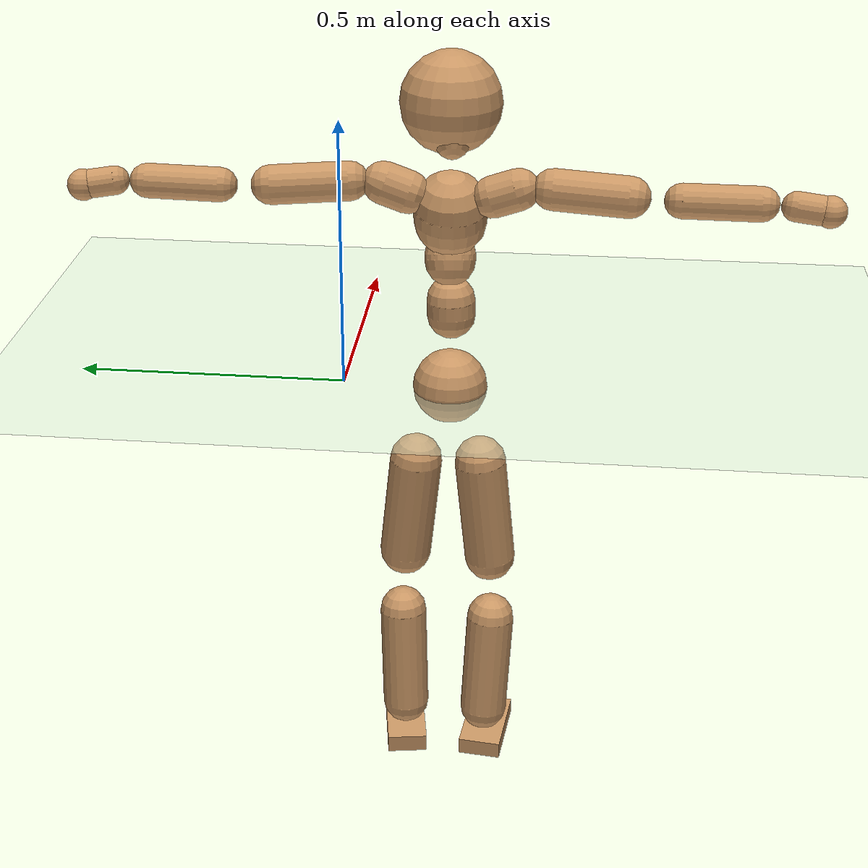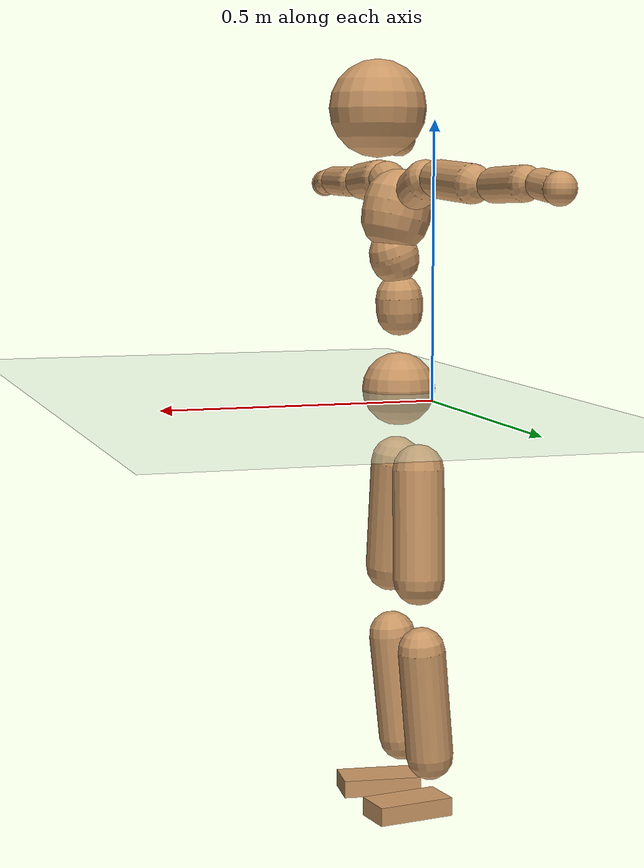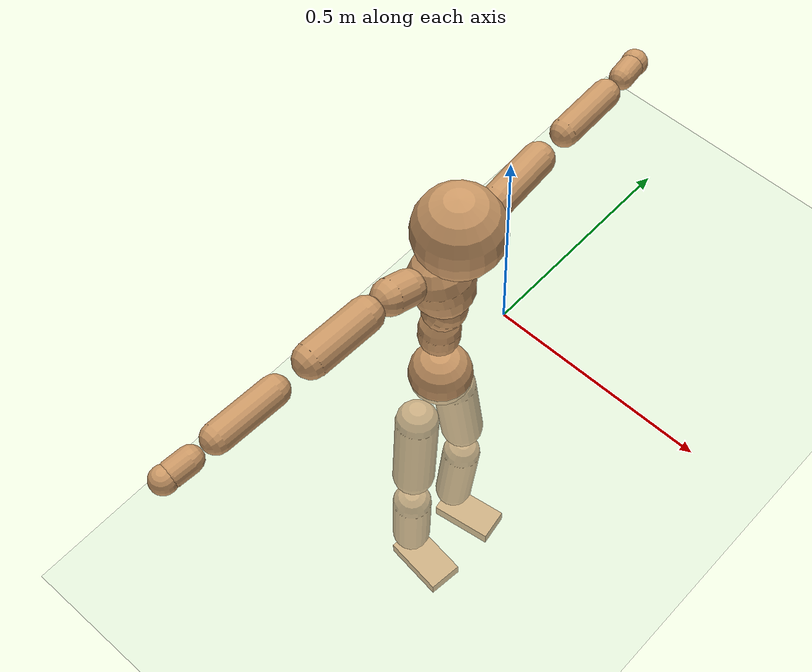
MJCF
<mujoco model="humanoid">
  <compiler coordinate="local"/>
  <default>
    <joint damping="0.0" armature="0.01" stiffness="0.0" limited="true"/>
    <geom conaffinity="1" condim="3" contype="7" margin="0.001" rgba="0.8 0.6 .4 1"/>
  </default>
  <asset>
    <texture type="skybox" builtin="gradient" rgb1=".4 .5 .6" rgb2="0 0 0" width="100" height="100"/>
    <texture builtin="flat" height="1278" mark="cross" markrgb="1 1 1" name="texgeom" random="0.01" rgb1="0.8 0.6 0.4" rgb2="0.8 0.6 0.4" type="cube" width="127"/>
    <texture builtin="checker" height="100" name="texplane" rgb1="0 0 0" rgb2="0.8 0.8 0.8" type="2d" width="100"/>
    <material name="MatPlane" reflectance="0.5" shininess="1" specular="1" texrepeat="60 60" texture="texplane"/>
    <material name="geom" texture="texgeom" texuniform="true"/>
  </asset>
  <worldbody>
    <light cutoff="100" diffuse="1 1 1" dir="-0 0 -1.3" directional="true" exponent="1" pos="0 0 1.3" specular=".1 .1 .1"/>
    <geom conaffinity="1" condim="3" name="floor" pos="0 0 0" rgba="0.8 0.9 0.8 1" size="100 100 .2" type="plane" material="MatPlane"/>
    <body name="Pelvis" pos="-0.0029 -0.1986 0.0023">
      <freejoint name="Pelvis"/>
      <geom type="sphere" contype="1" conaffinity="1" density="500" size="0.0692" pos="0.0000 0.0000 0.0000" name="Pelvis"/>
      <body name="L_Hip" pos="-0.0205 0.0544 -0.0803">
        <joint name="L_Hip_x" type="hinge" pos="0 0 0" axis="1 0 0" stiffness="800" damping="80" armature="0.02" range="-180.0000 180.0000"/>
        <joint name="L_Hip_y" type="hinge" pos="0 0 0" axis="0 1 0" stiffness="800" damping="80" armature="0.02" range="-180.0000 180.0000"/>
        <joint name="L_Hip_z" type="hinge" pos="0 0 0" axis="0 0 1" stiffness="800" damping="80" armature="0.02" range="-180.0000 180.0000"/>
        <geom type="capsule" contype="1" conaffinity="1" density="500" fromto="0.0017 0.0070 -0.0683 0.0068 0.0279 -0.2731" size="0.0492" name="L_Hip"/>
        <body name="L_Knee" pos="0.0085 0.0348 -0.3414">
          <joint name="L_Knee_x" type="hinge" pos="0 0 0" axis="1 0 0" stiffness="800" damping="80" armature="0.02" range="-180.0000 180.0000"/>
          <joint name="L_Knee_y" type="hinge" pos="0 0 0" axis="0 1 0" stiffness="800" damping="80" armature="0.02" range="-180.0000 180.0000"/>
          <joint name="L_Knee_z" type="hinge" pos="0 0 0" axis="0 0 1" stiffness="800" damping="80" armature="0.02" range="-180.0000 180.0000"/>
          <geom type="capsule" contype="1" conaffinity="1" density="500" fromto="-0.0067 -0.0023 -0.0694 -0.0268 -0.0094 -0.2776" size="0.0452" name="L_Knee"/>
          <body name="L_Ankle" pos="-0.0335 -0.0117 -0.347">
            <joint name="L_Ankle_x" type="hinge" pos="0 0 0" axis="1 0 0" stiffness="800" damping="80" armature="0.02" range="-180.0000 180.0000"/>
            <joint name="L_Ankle_y" type="hinge" pos="0 0 0" axis="0 1 0" stiffness="800" damping="80" armature="0.02" range="-180.0000 180.0000"/>
            <joint name="L_Ankle_z" type="hinge" pos="0 0 0" axis="0 0 1" stiffness="800" damping="80" armature="0.02" range="-180.0000 180.0000"/>
            <geom type="box" contype="1" conaffinity="1" density="500" pos="0.0533 0.0084 -0.0241" size="0.0754 0.039 0.0176" quat="0.9969 0.0000 0.0000 0.0781" name="L_Ankle"/>
            <body name="L_Toe" pos="0.1065 0.0168 -0.0482">
              <joint name="L_Toe_x" type="hinge" pos="0 0 0" axis="1 0 0" stiffness="500" damping="50" armature="0.02" range="-180.0000 180.0000"/>
              <joint name="L_Toe_y" type="hinge" pos="0 0 0" axis="0 1 0" stiffness="500" damping="50" armature="0.02" range="-180.0000 180.0000"/>
              <joint name="L_Toe_z" type="hinge" pos="0 0 0" axis="0 0 1" stiffness="500" damping="50" armature="0.02" range="-180.0000 180.0000"/>
              <geom type="box" contype="1" conaffinity="1" density="500" pos="0.0000 0.0000 0.0252" size="0.0008 0.002 0.0009" quat="0.9963 0.0000 0.0000 0.0856" name="L_Toe"/>
            </body>
          </body>
        </body>
      </body>
      <body name="R_Hip" pos="-0.0171 -0.0526 -0.0781">
        <joint name="R_Hip_x" type="hinge" pos="0 0 0" axis="1 0 0" stiffness="800" damping="80" armature="0.02" range="-180.0000 180.0000"/>
        <joint name="R_Hip_y" type="hinge" pos="0 0 0" axis="0 1 0" stiffness="800" damping="80" armature="0.02" range="-180.0000 180.0000"/>
        <joint name="R_Hip_z" type="hinge" pos="0 0 0" axis="0 0 1" stiffness="800" damping="80" armature="0.02" range="-180.0000 180.0000"/>
        <geom type="capsule" contype="1" conaffinity="1" density="500" fromto="0.0009 -0.0074 -0.0700 0.0037 -0.0296 -0.2801" size="0.0485" name="R_Hip"/>
        <body name="R_Knee" pos="0.0046 -0.037 -0.3501">
          <joint name="R_Knee_x" type="hinge" pos="0 0 0" axis="1 0 0" stiffness="800" damping="80" armature="0.02" range="-180.0000 180.0000"/>
          <joint name="R_Knee_y" type="hinge" pos="0 0 0" axis="0 1 0" stiffness="800" damping="80" armature="0.02" range="-180.0000 180.0000"/>
          <joint name="R_Knee_z" type="hinge" pos="0 0 0" axis="0 0 1" stiffness="800" damping="80" armature="0.02" range="-180.0000 180.0000"/>
          <geom type="capsule" contype="1" conaffinity="1" density="500" fromto="-0.0063 0.0030 -0.0691 -0.0252 0.0120 -0.2765" size="0.0457" name="R_Knee"/>
          <body name="R_Ankle" pos="-0.0314 0.0149 -0.3456">
            <joint name="R_Ankle_x" type="hinge" pos="0 0 0" axis="1 0 0" stiffness="800" damping="80" armature="0.02" range="-180.0000 180.0000"/>
            <joint name="R_Ankle_y" type="hinge" pos="0 0 0" axis="0 1 0" stiffness="800" damping="80" armature="0.02" range="-180.0000 180.0000"/>
            <joint name="R_Ankle_z" type="hinge" pos="0 0 0" axis="0 0 1" stiffness="800" damping="80" armature="0.02" range="-180.0000 180.0000"/>
            <geom type="box" contype="1" conaffinity="1" density="500" pos="0.0543 -0.0061 -0.0201" size="0.0764 0.0415 0.0168" quat="0.9984 0.0000 0.0000 -0.0557" name="R_Ankle"/>
            <body name="R_Toe" pos="0.1086 -0.0122 -0.0401">
              <joint name="R_Toe_x" type="hinge" pos="0 0 0" axis="1 0 0" stiffness="500" damping="50" armature="0.02" range="-180.0000 180.0000"/>
              <joint name="R_Toe_y" type="hinge" pos="0 0 0" axis="0 1 0" stiffness="500" damping="50" armature="0.02" range="-180.0000 180.0000"/>
              <joint name="R_Toe_z" type="hinge" pos="0 0 0" axis="0 0 1" stiffness="500" damping="50" armature="0.02" range="-180.0000 180.0000"/>
              <geom type="box" contype="1" conaffinity="1" density="500" pos="0.0000 0.0000 0.0223" size="0.0008 0.002 0.001" quat="0.9990 0.0000 0.0000 -0.0458" name="R_Toe"/>
            </body>
          </body>
        </body>
      </body>
      <body name="Torso" pos="-0.003 -0.0026 0.0907">
        <joint name="Torso_x" type="hinge" pos="0 0 0" axis="1 0 0" stiffness="1000" damping="100" armature="0.02" range="-180.0000 180.0000"/>
        <joint name="Torso_y" type="hinge" pos="0 0 0" axis="0 1 0" stiffness="1000" damping="100" armature="0.02" range="-180.0000 180.0000"/>
        <joint name="Torso_z" type="hinge" pos="0 0 0" axis="0 0 1" stiffness="1000" damping="100" armature="0.02" range="-180.0000 180.0000"/>
        <geom type="capsule" contype="1" conaffinity="1" density="500" fromto="0.0029 0.0028 0.0815 0.0019 0.0019 0.0544" size="0.044361" name="Torso"/>
        <body name="Spine" pos="0.0049 0.0047 0.1359">
          <joint name="Spine_x" type="hinge" pos="0 0 0" axis="1 0 0" stiffness="1000" damping="100" armature="0.02" range="-180.0000 180.0000"/>
          <joint name="Spine_y" type="hinge" pos="0 0 0" axis="0 1 0" stiffness="1000" damping="100" armature="0.02" range="-180.0000 180.0000"/>
          <joint name="Spine_z" type="hinge" pos="0 0 0" axis="0 0 1" stiffness="1000" damping="100" armature="0.02" range="-180.0000 180.0000"/>
          <geom type="capsule" contype="1" conaffinity="1" density="500" fromto="0.0109 0.0013 0.0283 0.0073 0.0009 0.0188" size="0.0465" name="Spine"/>
          <body name="Chest" pos="0.0182 0.0022 0.0471">
            <joint name="Chest_x" type="hinge" pos="0 0 0" axis="1 0 0" stiffness="1000" damping="100" armature="0.02" range="-180.0000 180.0000"/>
            <joint name="Chest_y" type="hinge" pos="0 0 0" axis="0 1 0" stiffness="1000" damping="100" armature="0.02" range="-180.0000 180.0000"/>
            <joint name="Chest_z" type="hinge" pos="0 0 0" axis="0 0 1" stiffness="1000" damping="100" armature="0.02" range="-180.0000 180.0000"/>
            <geom type="capsule" contype="1" conaffinity="1" density="500" fromto="-0.0173 -0.0015 0.0744 -0.0115 -0.0010 0.0496" size="0.065472" name="Chest"/>
            <body name="Neck" pos="-0.0279 -0.0046 0.1797">
              <joint name="Neck_x" type="hinge" pos="0 0 0" axis="1 0 0" stiffness="500" damping="50" armature="0.02" range="-180.0000 180.0000"/>
              <joint name="Neck_y" type="hinge" pos="0 0 0" axis="0 1 0" stiffness="500" damping="50" armature="0.02" range="-180.0000 180.0000"/>
              <joint name="Neck_z" type="hinge" pos="0 0 0" axis="0 0 1" stiffness="500" damping="50" armature="0.02" range="-180.0000 180.0000"/>
              <geom type="capsule" contype="1" conaffinity="1" density="500" fromto="0.0107 0.0015 0.0141 0.0427 0.0062 0.0563" size="0.031806" name="Neck"/>
              <body name="Head" pos="0.0533 0.0077 0.0704">
                <joint name="Head_x" type="hinge" pos="0 0 0" axis="1 0 0" stiffness="500" damping="50" armature="0.02" range="-180.0000 180.0000"/>
                <joint name="Head_y" type="hinge" pos="0 0 0" axis="0 1 0" stiffness="500" damping="50" armature="0.02" range="-180.0000 180.0000"/>
                <joint name="Head_z" type="hinge" pos="0 0 0" axis="0 0 1" stiffness="500" damping="50" armature="0.02" range="-180.0000 180.0000"/>
                <geom type="sphere" contype="1" conaffinity="1" density="500" size="0.0906" pos="0.0000 0.0000 0.0000" name="Head"/>
              </body>
            </body>
            <body name="L_Thorax" pos="-0.0271 0.0579 0.0973">
              <joint name="L_Thorax_x" type="hinge" pos="0 0 0" axis="1 0 0" stiffness="500" damping="50" armature="0.02" range="-180.0000 180.0000"/>
              <joint name="L_Thorax_y" type="hinge" pos="0 0 0" axis="0 1 0" stiffness="500" damping="50" armature="0.02" range="-180.0000 180.0000"/>
              <joint name="L_Thorax_z" type="hinge" pos="0 0 0" axis="0 0 1" stiffness="500" damping="50" armature="0.02" range="-180.0000 180.0000"/>
              <geom type="capsule" contype="1" conaffinity="1" density="500" fromto="-0.0002 0.0143 0.0053 -0.0010 0.0572 0.0211" size="0.0381" name="L_Thorax"/>
              <body name="L_Shoulder" pos="-0.0012 0.0715 0.0263">
                <joint name="L_Shoulder_x" type="hinge" pos="0 0 0" axis="1 0 0" stiffness="500" damping="50" armature="0.02" range="-720.0000 720.0000"/>
                <joint name="L_Shoulder_y" type="hinge" pos="0 0 0" axis="0 1 0" stiffness="500" damping="50" armature="0.02" range="-720.0000 720.0000"/>
                <joint name="L_Shoulder_z" type="hinge" pos="0 0 0" axis="0 0 1" stiffness="500" damping="50" armature="0.02" range="-720.0000 720.0000"/>
                <geom type="capsule" contype="1" conaffinity="1" density="500" fromto="-0.0042 0.0455 -0.0025 -0.0169 0.1821 -0.0100" size="0.0351" name="L_Shoulder"/>
                <body name="L_Elbow" pos="-0.0211 0.2277 -0.0125">
                  <joint name="L_Elbow_x" type="hinge" pos="0 0 0" axis="1 0 0" stiffness="500" damping="50" armature="0.02" range="-720.0000 720.0000"/>
                  <joint name="L_Elbow_y" type="hinge" pos="0 0 0" axis="0 1 0" stiffness="500" damping="50" armature="0.02" range="-720.0000 720.0000"/>
                  <joint name="L_Elbow_z" type="hinge" pos="0 0 0" axis="0 0 1" stiffness="500" damping="50" armature="0.02" range="-720.0000 720.0000"/>
                  <geom type="capsule" contype="1" conaffinity="1" density="500" fromto="-0.0007 0.0431 0.0012 -0.0029 0.1725 0.0049" size="0.0305" name="L_Elbow"/>
                  <body name="L_Wrist" pos="-0.0036 0.2156 0.0062">
                    <joint name="L_Wrist_x" type="hinge" pos="0 0 0" axis="1 0 0" stiffness="300" damping="30" armature="0.02" range="-180.0000 180.0000"/>
                    <joint name="L_Wrist_y" type="hinge" pos="0 0 0" axis="0 1 0" stiffness="300" damping="30" armature="0.02" range="-180.0000 180.0000"/>
                    <joint name="L_Wrist_z" type="hinge" pos="0 0 0" axis="0 0 1" stiffness="300" damping="30" armature="0.02" range="-180.0000 180.0000"/>
                    <geom type="capsule" contype="1" conaffinity="1" density="500" fromto="-0.0024 0.0138 -0.0017 -0.0095 0.0554 -0.0069" size="0.0257" name="L_Wrist"/>
                    <body name="L_Hand" pos="-0.0118 0.0692 -0.0087">
                      <joint name="L_Hand_x" type="hinge" pos="0 0 0" axis="1 0 0" stiffness="300" damping="30" armature="0.02" range="-180.0000 180.0000"/>
                      <joint name="L_Hand_y" type="hinge" pos="0 0 0" axis="0 1 0" stiffness="300" damping="30" armature="0.02" range="-180.0000 180.0000"/>
                      <joint name="L_Hand_z" type="hinge" pos="0 0 0" axis="0 0 1" stiffness="300" damping="30" armature="0.02" range="-180.0000 180.0000"/>
                      <geom type="sphere" contype="1" conaffinity="1" density="500" size="0.0279" pos="0.0000 0.0000 0.0000" name="L_Hand"/>
                    </body>
                  </body>
                </body>
              </body>
            </body>
            <body name="R_Thorax" pos="-0.0312 -0.0608 0.0952">
              <joint name="R_Thorax_x" type="hinge" pos="0 0 0" axis="1 0 0" stiffness="500" damping="50" armature="0.02" range="-180.0000 180.0000"/>
              <joint name="R_Thorax_y" type="hinge" pos="0 0 0" axis="0 1 0" stiffness="500" damping="50" armature="0.02" range="-180.0000 180.0000"/>
              <joint name="R_Thorax_z" type="hinge" pos="0 0 0" axis="0 0 1" stiffness="500" damping="50" armature="0.02" range="-180.0000 180.0000"/>
              <geom type="capsule" contype="1" conaffinity="1" density="500" fromto="-0.0011 -0.0151 0.0055 -0.0044 -0.0602 0.0219" size="0.0371" name="R_Thorax"/>
              <body name="R_Shoulder" pos="-0.0055 -0.0753 0.0273">
                <joint name="R_Shoulder_x" type="hinge" pos="0 0 0" axis="1 0 0" stiffness="500" damping="50" armature="0.02" range="-720.0000 720.0000"/>
                <joint name="R_Shoulder_y" type="hinge" pos="0 0 0" axis="0 1 0" stiffness="500" damping="50" armature="0.02" range="-720.0000 720.0000"/>
                <joint name="R_Shoulder_z" type="hinge" pos="0 0 0" axis="0 0 1" stiffness="500" damping="50" armature="0.02" range="-720.0000 720.0000"/>
                <geom type="capsule" contype="1" conaffinity="1" density="500" fromto="-0.0026 -0.0437 -0.0021 -0.0106 -0.1749 -0.0084" size="0.0366" name="R_Shoulder"/>
                <body name="R_Elbow" pos="-0.0132 -0.2186 -0.0105">
                  <joint name="R_Elbow_x" type="hinge" pos="0 0 0" axis="1 0 0" stiffness="500" damping="50" armature="0.02" range="-720.0000 720.0000"/>
                  <joint name="R_Elbow_y" type="hinge" pos="0 0 0" axis="0 1 0" stiffness="500" damping="50" armature="0.02" range="-720.0000 720.0000"/>
                  <joint name="R_Elbow_z" type="hinge" pos="0 0 0" axis="0 0 1" stiffness="500" damping="50" armature="0.02" range="-720.0000 720.0000"/>
                  <geom type="capsule" contype="1" conaffinity="1" density="500" fromto="-0.0018 -0.0444 0.0004 -0.0073 -0.1778 0.0015" size="0.0306" name="R_Elbow"/>
                  <body name="R_Wrist" pos="-0.0091 -0.2222 0.0019">
                    <joint name="R_Wrist_x" type="hinge" pos="0 0 0" axis="1 0 0" stiffness="300" damping="30" armature="0.02" range="-180.0000 180.0000"/>
                    <joint name="R_Wrist_y" type="hinge" pos="0 0 0" axis="0 1 0" stiffness="300" damping="30" armature="0.02" range="-180.0000 180.0000"/>
                    <joint name="R_Wrist_z" type="hinge" pos="0 0 0" axis="0 0 1" stiffness="300" damping="30" armature="0.02" range="-180.0000 180.0000"/>
                    <geom type="capsule" contype="1" conaffinity="1" density="500" fromto="-0.0017 -0.0139 -0.0013 -0.0069 -0.0555 -0.0050" size="0.0263" name="R_Wrist"/>
                    <body name="R_Hand" pos="-0.0087 -0.0694 -0.0063">
                      <joint name="R_Hand_x" type="hinge" pos="0 0 0" axis="1 0 0" stiffness="300" damping="30" armature="0.02" range="-180.0000 180.0000"/>
                      <joint name="R_Hand_y" type="hinge" pos="0 0 0" axis="0 1 0" stiffness="300" damping="30" armature="0.02" range="-180.0000 180.0000"/>
                      <joint name="R_Hand_z" type="hinge" pos="0 0 0" axis="0 0 1" stiffness="300" damping="30" armature="0.02" range="-180.0000 180.0000"/>
                      <geom type="sphere" contype="1" conaffinity="1" density="500" size="0.0279" pos="0.0000 0.0000 0.0000" name="R_Hand"/>
                    </body>
                  </body>
                </body>
              </body>
            </body>
          </body>
        </body>
      </body>
    </body>
  </worldbody>
  <actuator>
    <motor name="L_Hip_x" joint="L_Hip_x" gear="500"/>
    <motor name="L_Hip_y" joint="L_Hip_y" gear="500"/>
    <motor name="L_Hip_z" joint="L_Hip_z" gear="500"/>
    <motor name="L_Knee_x" joint="L_Knee_x" gear="500"/>
    <motor name="L_Knee_y" joint="L_Knee_y" gear="500"/>
    <motor name="L_Knee_z" joint="L_Knee_z" gear="500"/>
    <motor name="L_Ankle_x" joint="L_Ankle_x" gear="500"/>
    <motor name="L_Ankle_y" joint="L_Ankle_y" gear="500"/>
    <motor name="L_Ankle_z" joint="L_Ankle_z" gear="500"/>
    <motor name="L_Toe_x" joint="L_Toe_x" gear="500"/>
    <motor name="L_Toe_y" joint="L_Toe_y" gear="500"/>
    <motor name="L_Toe_z" joint="L_Toe_z" gear="500"/>
    <motor name="R_Hip_x" joint="R_Hip_x" gear="500"/>
    <motor name="R_Hip_y" joint="R_Hip_y" gear="500"/>
    <motor name="R_Hip_z" joint="R_Hip_z" gear="500"/>
    <motor name="R_Knee_x" joint="R_Knee_x" gear="500"/>
    <motor name="R_Knee_y" joint="R_Knee_y" gear="500"/>
    <motor name="R_Knee_z" joint="R_Knee_z" gear="500"/>
    <motor name="R_Ankle_x" joint="R_Ankle_x" gear="500"/>
    <motor name="R_Ankle_y" joint="R_Ankle_y" gear="500"/>
    <motor name="R_Ankle_z" joint="R_Ankle_z" gear="500"/>
    <motor name="R_Toe_x" joint="R_Toe_x" gear="500"/>
    <motor name="R_Toe_y" joint="R_Toe_y" gear="500"/>
    <motor name="R_Toe_z" joint="R_Toe_z" gear="500"/>
    <motor name="Torso_x" joint="Torso_x" gear="500"/>
    <motor name="Torso_y" joint="Torso_y" gear="500"/>
    <motor name="Torso_z" joint="Torso_z" gear="500"/>
    <motor name="Spine_x" joint="Spine_x" gear="500"/>
    <motor name="Spine_y" joint="Spine_y" gear="500"/>
    <motor name="Spine_z" joint="Spine_z" gear="500"/>
    <motor name="Chest_x" joint="Chest_x" gear="500"/>
    <motor name="Chest_y" joint="Chest_y" gear="500"/>
    <motor name="Chest_z" joint="Chest_z" gear="500"/>
    <motor name="Neck_x" joint="Neck_x" gear="500"/>
    <motor name="Neck_y" joint="Neck_y" gear="500"/>
    <motor name="Neck_z" joint="Neck_z" gear="500"/>
    <motor name="Head_x" joint="Head_x" gear="500"/>
    <motor name="Head_y" joint="Head_y" gear="500"/>
    <motor name="Head_z" joint="Head_z" gear="500"/>
    <motor name="L_Thorax_x" joint="L_Thorax_x" gear="500"/>
    <motor name="L_Thorax_y" joint="L_Thorax_y" gear="500"/>
    <motor name="L_Thorax_z" joint="L_Thorax_z" gear="500"/>
    <motor name="L_Shoulder_x" joint="L_Shoulder_x" gear="500"/>
    <motor name="L_Shoulder_y" joint="L_Shoulder_y" gear="500"/>
    <motor name="L_Shoulder_z" joint="L_Shoulder_z" gear="500"/>
    <motor name="L_Elbow_x" joint="L_Elbow_x" gear="500"/>
    <motor name="L_Elbow_y" joint="L_Elbow_y" gear="500"/>
    <motor name="L_Elbow_z" joint="L_Elbow_z" gear="500"/>
    <motor name="L_Wrist_x" joint="L_Wrist_x" gear="500"/>
    <motor name="L_Wrist_y" joint="L_Wrist_y" gear="500"/>
    <motor name="L_Wrist_z" joint="L_Wrist_z" gear="500"/>
    <motor name="L_Hand_x" joint="L_Hand_x" gear="500"/>
    <motor name="L_Hand_y" joint="L_Hand_y" gear="500"/>
    <motor name="L_Hand_z" joint="L_Hand_z" gear="500"/>
    <motor name="R_Thorax_x" joint="R_Thorax_x" gear="500"/>
    <motor name="R_Thorax_y" joint="R_Thorax_y" gear="500"/>
    <motor name="R_Thorax_z" joint="R_Thorax_z" gear="500"/>
    <motor name="R_Shoulder_x" joint="R_Shoulder_x" gear="500"/>
    <motor name="R_Shoulder_y" joint="R_Shoulder_y" gear="500"/>
    <motor name="R_Shoulder_z" joint="R_Shoulder_z" gear="500"/>
    <motor name="R_Elbow_x" joint="R_Elbow_x" gear="500"/>
    <motor name="R_Elbow_y" joint="R_Elbow_y" gear="500"/>
    <motor name="R_Elbow_z" joint="R_Elbow_z" gear="500"/>
    <motor name="R_Wrist_x" joint="R_Wrist_x" gear="500"/>
    <motor name="R_Wrist_y" joint="R_Wrist_y" gear="500"/>
    <motor name="R_Wrist_z" joint="R_Wrist_z" gear="500"/>
    <motor name="R_Hand_x" joint="R_Hand_x" gear="500"/>
    <motor name="R_Hand_y" joint="R_Hand_y" gear="500"/>
    <motor name="R_Hand_z" joint="R_Hand_z" gear="500"/>
  </actuator>
  <contact>
    <exclude body1="Torso" body2="Chest"/>
    <exclude body1="Head" body2="Chest"/>
    <exclude body1="R_Knee" body2="R_Toe"/>
    <exclude body1="R_Knee" body2="L_Ankle"/>
    <exclude body1="R_Knee" body2="L_Toe"/>
    <exclude body1="L_Knee" body2="L_Toe"/>
    <exclude body1="L_Knee" body2="R_Ankle"/>
    <exclude body1="L_Knee" body2="R_Toe"/>
    <exclude body1="L_Shoulder" body2="Chest"/>
    <exclude body1="R_Shoulder" body2="Chest"/>
  </contact>
  <sensor/>
  <size njmax="700" nconmax="700"/>
</mujoco>
